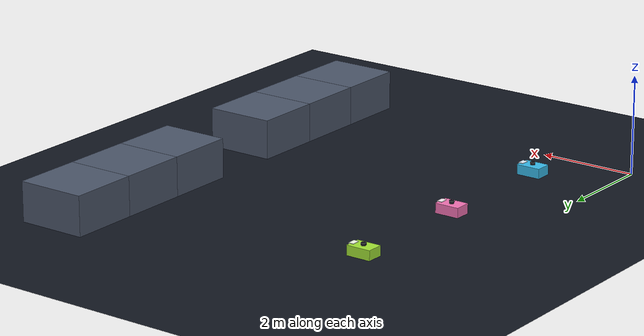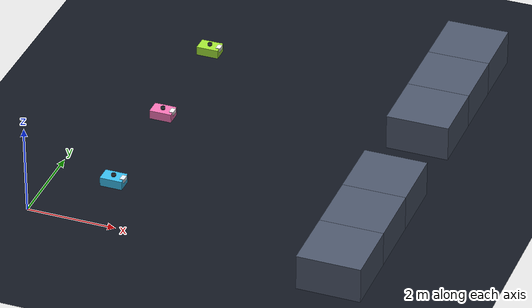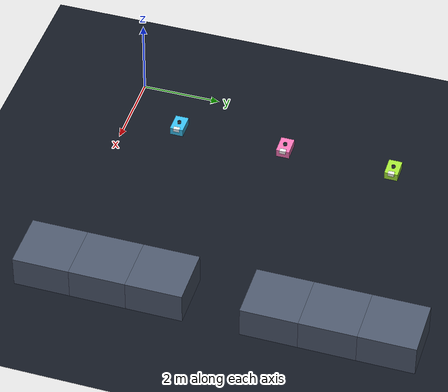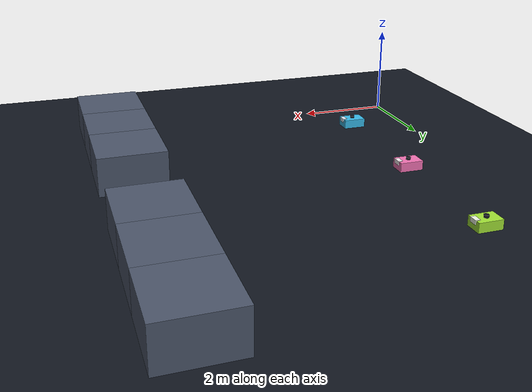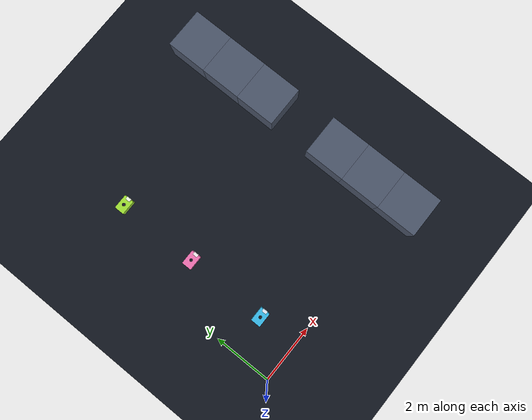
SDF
<?xml version="1.0" ?>
<sdf version="1.8">
  <world name="coord_demo">
    <physics name="1ms" type="ignored"><max_step_size>0.001</max_step_size><real_time_factor>1.0</real_time_factor></physics>
    <plugin filename="gz-sim-physics-system" name="gz::sim::systems::Physics"/>
    <plugin filename="gz-sim-user-commands-system" name="gz::sim::systems::UserCommands"/>
    <plugin filename="gz-sim-scene-broadcaster-system" name="gz::sim::systems::SceneBroadcaster"/>
    <plugin filename="gz-sim-sensors-system" name="gz::sim::systems::Sensors"><render_engine>ogre2</render_engine><background_color>0.043 0.055 0.078 1</background_color></plugin>
    <scene><ambient>0.5 0.5 0.55 1</ambient><background>0.043 0.055 0.078 1</background><grid>false</grid><shadows>true</shadows></scene>
    <light type="directional" name="sun"><cast_shadows>true</cast_shadows><pose>0 0 10 0 0 0</pose><diffuse>0.9 0.9 0.9 1</diffuse><specular>0.25 0.25 0.25 1</specular><direction>-0.4 0.3 -0.9</direction></light>
    <model name="ground_plane"><static>true</static><link name="link">
      <collision name="c"><geometry><plane><normal>0 0 1</normal><size>60 60</size></plane></geometry></collision>
      <visual name="v"><geometry><plane><normal>0 0 1</normal><size>60 60</size></plane></geometry><material><ambient>0.05 0.07 0.10 1</ambient><diffuse>0.07 0.09 0.13 1</diffuse></material></visual></link></model>

    <model name="wall_0"><static>true</static><pose>7.0 0.0 0.4 0 0 0</pose><link name="link">
      <collision name="c"><geometry><box><size>1.4 1.4 0.8</size></box></geometry></collision>
      <visual name="v"><geometry><box><size>1.4 1.4 0.8</size></box></geometry>
        <material><ambient>0.26 0.30 0.37 1</ambient><diffuse>0.30 0.34 0.42 1</diffuse></material></visual></link></model>
    <model name="wall_1"><static>true</static><pose>7.0 1.4 0.4 0 0 0</pose><link name="link">
      <collision name="c"><geometry><box><size>1.4 1.4 0.8</size></box></geometry></collision>
      <visual name="v"><geometry><box><size>1.4 1.4 0.8</size></box></geometry>
        <material><ambient>0.26 0.30 0.37 1</ambient><diffuse>0.30 0.34 0.42 1</diffuse></material></visual></link></model>
    <model name="wall_2"><static>true</static><pose>7.0 2.8 0.4 0 0 0</pose><link name="link">
      <collision name="c"><geometry><box><size>1.4 1.4 0.8</size></box></geometry></collision>
      <visual name="v"><geometry><box><size>1.4 1.4 0.8</size></box></geometry>
        <material><ambient>0.26 0.30 0.37 1</ambient><diffuse>0.30 0.34 0.42 1</diffuse></material></visual></link></model>
    <model name="wall_3"><static>true</static><pose>7.0 5.6 0.4 0 0 0</pose><link name="link">
      <collision name="c"><geometry><box><size>1.4 1.4 0.8</size></box></geometry></collision>
      <visual name="v"><geometry><box><size>1.4 1.4 0.8</size></box></geometry>
        <material><ambient>0.26 0.30 0.37 1</ambient><diffuse>0.30 0.34 0.42 1</diffuse></material></visual></link></model>
    <model name="wall_4"><static>true</static><pose>7.0 7.0 0.4 0 0 0</pose><link name="link">
      <collision name="c"><geometry><box><size>1.4 1.4 0.8</size></box></geometry></collision>
      <visual name="v"><geometry><box><size>1.4 1.4 0.8</size></box></geometry>
        <material><ambient>0.26 0.30 0.37 1</ambient><diffuse>0.30 0.34 0.42 1</diffuse></material></visual></link></model>
    <model name="wall_5"><static>true</static><pose>7.0 8.399999999999999 0.4 0 0 0</pose><link name="link">
      <collision name="c"><geometry><box><size>1.4 1.4 0.8</size></box></geometry></collision>
      <visual name="v"><geometry><box><size>1.4 1.4 0.8</size></box></geometry>
        <material><ambient>0.26 0.30 0.37 1</ambient><diffuse>0.30 0.34 0.42 1</diffuse></material></visual></link></model>

    <model name="r1">
      <pose>1.4 1.4 0.1 0 0 0</pose>
      <link name="base">
        <inertial><mass>1.5</mass><inertia><ixx>0.03</ixx><iyy>0.03</iyy><izz>0.05</izz><ixy>0</ixy><ixz>0</ixz><iyz>0</iyz></inertia></inertial>
        <collision name="c"><pose>0 0 0.1 0 0 0</pose><geometry><box><size>0.5 0.34 0.2</size></box></geometry></collision>
        <visual name="v"><pose>0 0 0.1 0 0 0</pose><geometry><box><size>0.5 0.34 0.2</size></box></geometry>
          <material><ambient>0.13 0.55 0.77 1</ambient><diffuse>0.22 0.74 0.93 1</diffuse><specular>0.3 0.3 0.3 1</specular></material></visual>
        <visual name="nose"><pose>0.22 0 0.17 0 0 0</pose><geometry><box><size>0.1 0.16 0.09</size></box></geometry>
          <material><ambient>0.9 0.95 1 1</ambient><diffuse>0.9 0.95 1 1</diffuse></material></visual>
        <visual name="puck"><pose>0 0 0.22 0 0 0</pose><geometry><cylinder><radius>0.05</radius><length>0.06</length></cylinder></geometry>
          <material><ambient>0.05 0.06 0.08 1</ambient><diffuse>0.08 0.09 0.11 1</diffuse></material></visual>
        <sensor name="lidar" type="gpu_lidar"><pose>0 0 0.25 0 0 0</pose><update_rate>15</update_rate><always_on>1</always_on><topic>/model/r1/scan</topic>
          <lidar><scan><horizontal><samples>120</samples><resolution>1</resolution><min_angle>-3.14159</min_angle><max_angle>3.14159</max_angle></horizontal></scan>
            <range><min>0.12</min><max>6.0</max><resolution>0.01</resolution></range></lidar></sensor>
      </link>
      <plugin filename="gz-sim-velocity-control-system" name="gz::sim::systems::VelocityControl"><topic>/model/r1/cmd_vel</topic></plugin>
      <plugin filename="gz-sim-pose-publisher-system" name="gz::sim::systems::PosePublisher">
        <publish_link_pose>false</publish_link_pose><publish_model_pose>true</publish_model_pose>
        <use_pose_vector_msg>false</use_pose_vector_msg><static_publisher>false</static_publisher><update_frequency>30</update_frequency></plugin>
    </model>
    <model name="r2">
      <pose>1.4 4.199999999999999 0.1 0 0 0</pose>
      <link name="base">
        <inertial><mass>1.5</mass><inertia><ixx>0.03</ixx><iyy>0.03</iyy><izz>0.05</izz><ixy>0</ixy><ixz>0</ixz><iyz>0</iyz></inertia></inertial>
        <collision name="c"><pose>0 0 0.1 0 0 0</pose><geometry><box><size>0.5 0.34 0.2</size></box></geometry></collision>
        <visual name="v"><pose>0 0 0.1 0 0 0</pose><geometry><box><size>0.5 0.34 0.2</size></box></geometry>
          <material><ambient>0.78 0.30 0.55 1</ambient><diffuse>0.96 0.45 0.71 1</diffuse><specular>0.3 0.3 0.3 1</specular></material></visual>
        <visual name="nose"><pose>0.22 0 0.17 0 0 0</pose><geometry><box><size>0.1 0.16 0.09</size></box></geometry>
          <material><ambient>1 0.95 0.97 1</ambient><diffuse>1 0.95 0.97 1</diffuse></material></visual>
        <visual name="puck"><pose>0 0 0.22 0 0 0</pose><geometry><cylinder><radius>0.05</radius><length>0.06</length></cylinder></geometry>
          <material><ambient>0.05 0.06 0.08 1</ambient><diffuse>0.08 0.09 0.11 1</diffuse></material></visual>
        <sensor name="lidar" type="gpu_lidar"><pose>0 0 0.25 0 0 0</pose><update_rate>15</update_rate><always_on>1</always_on><topic>/model/r2/scan</topic>
          <lidar><scan><horizontal><samples>120</samples><resolution>1</resolution><min_angle>-3.14159</min_angle><max_angle>3.14159</max_angle></horizontal></scan>
            <range><min>0.12</min><max>6.0</max><resolution>0.01</resolution></range></lidar></sensor>
      </link>
      <plugin filename="gz-sim-velocity-control-system" name="gz::sim::systems::VelocityControl"><topic>/model/r2/cmd_vel</topic></plugin>
      <plugin filename="gz-sim-pose-publisher-system" name="gz::sim::systems::PosePublisher">
        <publish_link_pose>false</publish_link_pose><publish_model_pose>true</publish_model_pose>
        <use_pose_vector_msg>false</use_pose_vector_msg><static_publisher>false</static_publisher><update_frequency>30</update_frequency></plugin>
    </model>
    <model name="r3">
      <pose>1.4 7.0 0.1 0 0 0</pose>
      <link name="base">
        <inertial><mass>1.5</mass><inertia><ixx>0.03</ixx><iyy>0.03</iyy><izz>0.05</izz><ixy>0</ixy><ixz>0</ixz><iyz>0</iyz></inertia></inertial>
        <collision name="c"><pose>0 0 0.1 0 0 0</pose><geometry><box><size>0.5 0.34 0.2</size></box></geometry></collision>
        <visual name="v"><pose>0 0 0.1 0 0 0</pose><geometry><box><size>0.5 0.34 0.2</size></box></geometry>
          <material><ambient>0.51 0.74 0.16 1</ambient><diffuse>0.64 0.90 0.21 1</diffuse><specular>0.3 0.3 0.3 1</specular></material></visual>
        <visual name="nose"><pose>0.22 0 0.17 0 0 0</pose><geometry><box><size>0.1 0.16 0.09</size></box></geometry>
          <material><ambient>0.97 1 0.92 1</ambient><diffuse>0.97 1 0.92 1</diffuse></material></visual>
        <visual name="puck"><pose>0 0 0.22 0 0 0</pose><geometry><cylinder><radius>0.05</radius><length>0.06</length></cylinder></geometry>
          <material><ambient>0.05 0.06 0.08 1</ambient><diffuse>0.08 0.09 0.11 1</diffuse></material></visual>
        <sensor name="lidar" type="gpu_lidar"><pose>0 0 0.25 0 0 0</pose><update_rate>15</update_rate><always_on>1</always_on><topic>/model/r3/scan</topic>
          <lidar><scan><horizontal><samples>120</samples><resolution>1</resolution><min_angle>-3.14159</min_angle><max_angle>3.14159</max_angle></horizontal></scan>
            <range><min>0.12</min><max>6.0</max><resolution>0.01</resolution></range></lidar></sensor>
      </link>
      <plugin filename="gz-sim-velocity-control-system" name="gz::sim::systems::VelocityControl"><topic>/model/r3/cmd_vel</topic></plugin>
      <plugin filename="gz-sim-pose-publisher-system" name="gz::sim::systems::PosePublisher">
        <publish_link_pose>false</publish_link_pose><publish_model_pose>true</publish_model_pose>
        <use_pose_vector_msg>false</use_pose_vector_msg><static_publisher>false</static_publisher><update_frequency>30</update_frequency></plugin>
    </model>

    <model name="rec_camera"><static>true</static><pose>7.699999999999999 -4.6000000000000005 12.0 0 0.78 1.5707</pose>
      <link name="link"><sensor name="rec" type="camera">
        <camera><horizontal_fov>0.92</horizontal_fov><image><width>1000</width><height>660</height></image><clip><near>0.1</near><far>120</far></clip></camera>
        <always_on>1</always_on><update_rate>30</update_rate><topic>rec_camera</topic></sensor></link></model>
  </world>
</sdf>
